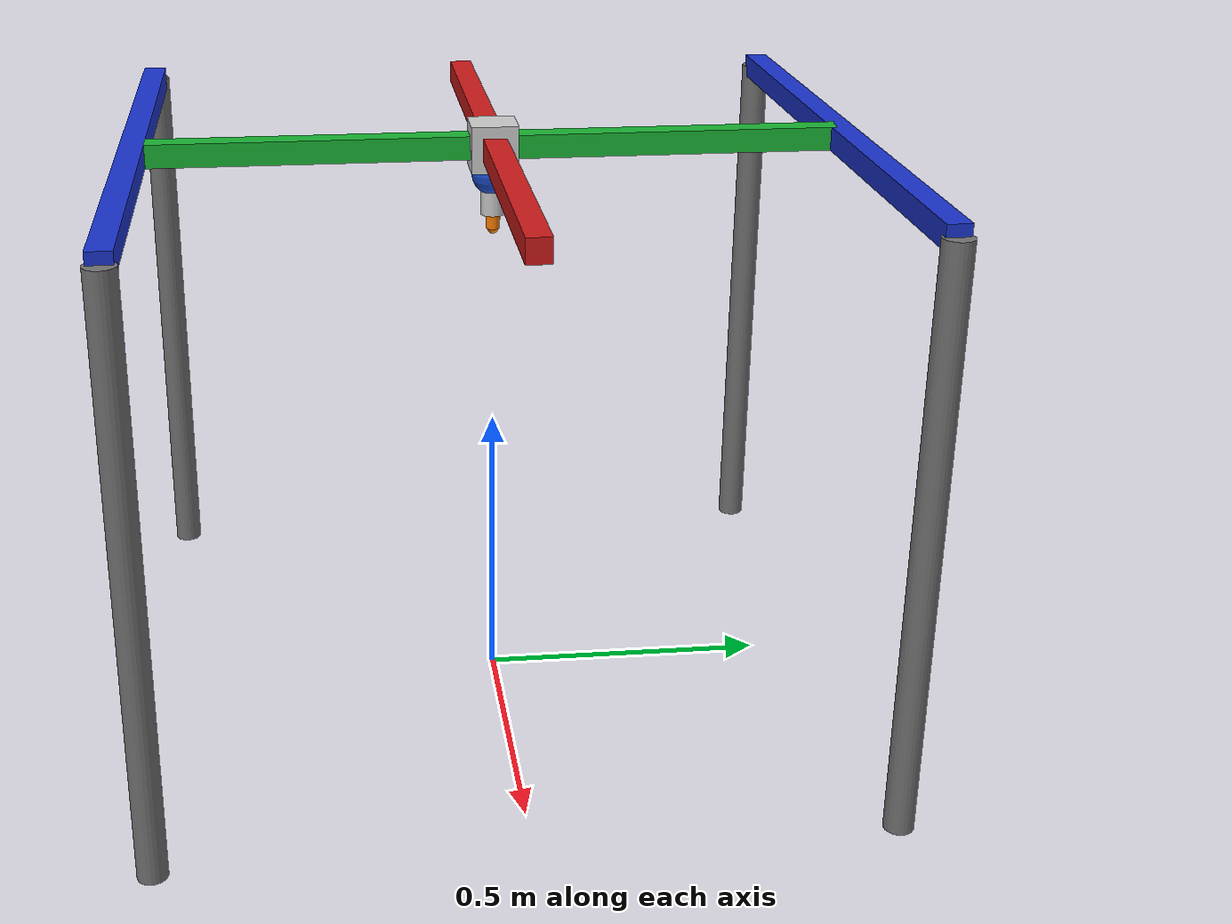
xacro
<?xml version="1.0" ?>
<robot name="xyz_ur_robot" xmlns:xacro="http://ros.org/wiki/xacro">

  <xacro:property name="PI"       value="3.14159265358979"/>
  <xacro:property name="RAIL_X"   value="1.2"/>
  <xacro:property name="RAIL_Y"   value="1.2"/>
  <xacro:property name="RAIL_Z"   value="0.7"/>
  <xacro:property name="RAIL_W"   value="0.04"/>
  <xacro:property name="CARRIAGE" value="0.08"/>
  <xacro:property name="GANTRY_H" value="1.0"/>
  <xacro:property name="HEAD_R"   value="0.03"/>

  <!-- world -->
  <link name="world"/>
  <joint name="world_to_base" type="fixed">
    <parent link="world"/>
    <child  link="base_link"/>
    <origin xyz="0 0 0" rpy="0 0 0"/>
  </joint>

  <!-- gantry frame (identical to xyz_gantry) -->
  <link name="base_link">
    <inertial>
      <origin xyz="0 0 ${GANTRY_H/2}" rpy="0 0 0"/>
      <mass value="30.0"/>
      <inertia ixx="5.0" ixy="0" ixz="0" iyy="5.0" iyz="0" izz="2.0"/>
    </inertial>
    <visual>
      <origin xyz="0 ${ RAIL_Y/2} ${GANTRY_H}" rpy="0 0 0"/>
      <geometry><box size="${RAIL_X} ${RAIL_W} ${RAIL_W}"/></geometry>
      <material name="rail_blue"><color rgba="0.1 0.2 0.8 1"/></material>
    </visual>
    <visual>
      <origin xyz="0 ${-RAIL_Y/2} ${GANTRY_H}" rpy="0 0 0"/>
      <geometry><box size="${RAIL_X} ${RAIL_W} ${RAIL_W}"/></geometry>
      <material name="rail_blue"><color rgba="0.1 0.2 0.8 1"/></material>
    </visual>
    <!-- posts -->
    <visual>
      <origin xyz="${ RAIL_X/2}  ${RAIL_Y/2} ${GANTRY_H/2}" rpy="0 0 0"/>
      <geometry><cylinder radius="0.025" length="${GANTRY_H}"/></geometry>
      <material name="frame_grey"><color rgba="0.45 0.45 0.45 1"/></material>
    </visual>
    <visual>
      <origin xyz="${-RAIL_X/2}  ${RAIL_Y/2} ${GANTRY_H/2}" rpy="0 0 0"/>
      <geometry><cylinder radius="0.025" length="${GANTRY_H}"/></geometry>
      <material name="frame_grey"><color rgba="0.45 0.45 0.45 1"/></material>
    </visual>
    <visual>
      <origin xyz="${ RAIL_X/2} ${-RAIL_Y/2} ${GANTRY_H/2}" rpy="0 0 0"/>
      <geometry><cylinder radius="0.025" length="${GANTRY_H}"/></geometry>
      <material name="frame_grey"><color rgba="0.45 0.45 0.45 1"/></material>
    </visual>
    <visual>
      <origin xyz="${-RAIL_X/2} ${-RAIL_Y/2} ${GANTRY_H/2}" rpy="0 0 0"/>
      <geometry><cylinder radius="0.025" length="${GANTRY_H}"/></geometry>
      <material name="frame_grey"><color rgba="0.45 0.45 0.45 1"/></material>
    </visual>
    <collision>
      <origin xyz="0 0 ${GANTRY_H}" rpy="0 0 0"/>
      <geometry><box size="${RAIL_X + 0.05} ${RAIL_Y + 0.05} ${RAIL_W}"/></geometry>
    </collision>
  </link>

  <!-- J0: Z stroke -->
  <joint name="JOINT_0_ACT" type="prismatic">
    <parent link="base_link"/>
    <child  link="link_z_carriage"/>
    <origin xyz="0 0 ${GANTRY_H}" rpy="0 0 0"/>
    <axis xyz="0 0 1"/>
    <limit lower="${-RAIL_Z * 0.8}" upper="0.0" effort="200" velocity="1.0"/>
    <dynamics damping="0.2" friction="0.05"/>
  </joint>

  <link name="link_z_carriage">
    <inertial><origin xyz="0 0 0" rpy="0 0 0"/><mass value="3.0"/>
      <inertia ixx="0.05" ixy="0" ixz="0" iyy="0.05" iyz="0" izz="0.01"/>
    </inertial>
    <visual><origin xyz="0 0 0" rpy="0 0 0"/>
      <geometry><box size="${CARRIAGE} ${CARRIAGE} ${CARRIAGE}"/></geometry>
      <material name="c_silver"><color rgba="0.8 0.8 0.8 1"/></material>
    </visual>
    <visual><origin xyz="0 0 0" rpy="0 0 0"/>
      <geometry><box size="${RAIL_W} ${RAIL_Y} ${RAIL_W}"/></geometry>
      <material name="rail_green"><color rgba="0.1 0.7 0.2 1"/></material>
    </visual>
    <collision><origin xyz="0 0 0" rpy="0 0 0"/>
      <geometry><box size="${CARRIAGE} ${CARRIAGE} ${CARRIAGE}"/></geometry>
    </collision>
  </link>

  <!-- J1: -Y stroke -->
  <joint name="JOINT_1_ACT" type="prismatic">
    <parent link="link_z_carriage"/>
    <child  link="link_y_carriage"/>
    <origin xyz="0 0 0" rpy="0 0 0"/>
    <axis xyz="0 -1 0"/>
    <limit lower="${-RAIL_Y * 0.4}" upper="${RAIL_Y * 0.4}" effort="150" velocity="1.0"/>
    <dynamics damping="0.1" friction="0.03"/>
  </joint>

  <link name="link_y_carriage">
    <inertial><origin xyz="0 0 0" rpy="0 0 0"/><mass value="2.0"/>
      <inertia ixx="0.02" ixy="0" ixz="0" iyy="0.02" iyz="0" izz="0.005"/>
    </inertial>
    <visual><origin xyz="0 0 0" rpy="0 0 0"/>
      <geometry><box size="${CARRIAGE} ${CARRIAGE} ${CARRIAGE}"/></geometry>
      <material name="c_silver"><color rgba="0.8 0.8 0.8 1"/></material>
    </visual>
    <visual><origin xyz="0 0 0" rpy="0 0 0"/>
      <geometry><box size="${RAIL_X} ${RAIL_W} ${RAIL_W}"/></geometry>
      <material name="rail_red"><color rgba="0.8 0.1 0.1 1"/></material>
    </visual>
    <collision><origin xyz="0 0 0" rpy="0 0 0"/>
      <geometry><box size="${CARRIAGE} ${CARRIAGE} ${CARRIAGE}"/></geometry>
    </collision>
  </link>

  <!-- J2: X stroke -->
  <joint name="JOINT_2_ACT" type="prismatic">
    <parent link="link_y_carriage"/>
    <child  link="link_x_carriage"/>
    <origin xyz="0 0 0" rpy="0 0 0"/>
    <axis xyz="1 0 0"/>
    <limit lower="${-RAIL_X * 0.4}" upper="${RAIL_X * 0.4}" effort="150" velocity="1.0"/>
    <dynamics damping="0.1" friction="0.03"/>
  </joint>

  <link name="link_x_carriage">
    <inertial><origin xyz="0 0 0" rpy="0 0 0"/><mass value="1.0"/>
      <inertia ixx="0.005" ixy="0" ixz="0" iyy="0.005" iyz="0" izz="0.002"/>
    </inertial>
    <visual><origin xyz="0 0 0" rpy="0 0 0"/>
      <geometry><box size="${CARRIAGE * 0.9} ${CARRIAGE * 0.9} ${CARRIAGE * 0.9}"/></geometry>
      <material name="c_silver"><color rgba="0.8 0.8 0.8 1"/></material>
    </visual>
    <collision><origin xyz="0 0 0" rpy="0 0 0"/>
      <geometry><box size="${CARRIAGE * 0.9} ${CARRIAGE * 0.9} ${CARRIAGE * 0.9}"/></geometry>
    </collision>
  </link>

  <!-- ======================================================= UJNT part: J3 pan (revolute Z, as UJNT::CartToJnt) -->
  <joint name="JOINT_3_ACT" type="revolute">
    <parent link="link_x_carriage"/>
    <child  link="link_ujnt_1"/>
    <origin xyz="0 0 -0.05" rpy="0 0 0"/>
    <axis xyz="0 0 1"/>
    <limit lower="${-PI/2}" upper="${PI/2}" effort="30" velocity="3.14"/>
    <dynamics damping="0.1" friction="0.05"/>
  </joint>

  <link name="link_ujnt_1">
    <inertial><origin xyz="0 0 -0.04" rpy="0 0 0"/><mass value="0.3"/>
      <inertia ixx="0.001" ixy="0" ixz="0" iyy="0.001" iyz="0" izz="0.0005"/>
    </inertial>
    <visual><origin xyz="0 0 0" rpy="0 0 0"/>
      <geometry><sphere radius="${HEAD_R * 1.2}"/></geometry>
      <material name="head_blue"><color rgba="0.1 0.3 0.8 1"/></material>
    </visual>
    <visual><origin xyz="0 0 -0.04" rpy="0 0 0"/>
      <geometry><cylinder radius="${HEAD_R * 0.7}" length="0.06"/></geometry>
      <material name="c_silver"><color rgba="0.8 0.8 0.8 1"/></material>
    </visual>
    <collision><origin xyz="0 0 -0.04" rpy="0 0 0"/>
      <geometry><cylinder radius="${HEAD_R * 0.7}" length="0.06"/></geometry>
    </collision>
  </link>

  <!-- J4: tilt (revolute Y) -->
  <joint name="JOINT_4_ACT" type="revolute">
    <parent link="link_ujnt_1"/>
    <child  link="link_tcp"/>
    <origin xyz="0 0 -0.05" rpy="0 0 0"/>
    <axis xyz="0 1 0"/>
    <limit lower="${-PI/2}" upper="${PI/2}" effort="20" velocity="3.14"/>
    <dynamics damping="0.05" friction="0.02"/>
  </joint>

  <!-- TCP / tool -->
  <link name="link_tcp">
    <inertial><origin xyz="0 0 -0.025" rpy="0 0 0"/><mass value="0.1"/>
      <inertia ixx="0.0002" ixy="0" ixz="0" iyy="0.0002" iyz="0" izz="0.0001"/>
    </inertial>
    <visual><origin xyz="0 0 -0.025" rpy="0 0 0"/>
      <geometry><cylinder radius="0.012" length="0.04"/></geometry>
      <material name="tcp_orange"><color rgba="1.0 0.5 0.0 1"/></material>
    </visual>
    <visual><origin xyz="0 0 -0.045" rpy="0 0 0"/>
      <geometry><sphere radius="0.01"/></geometry>
      <material name="tcp_orange"><color rgba="1.0 0.5 0.0 1"/></material>
    </visual>
    <collision><origin xyz="0 0 -0.025" rpy="0 0 0"/>
      <geometry><cylinder radius="0.012" length="0.04"/></geometry>
    </collision>
  </link>

</robot>
